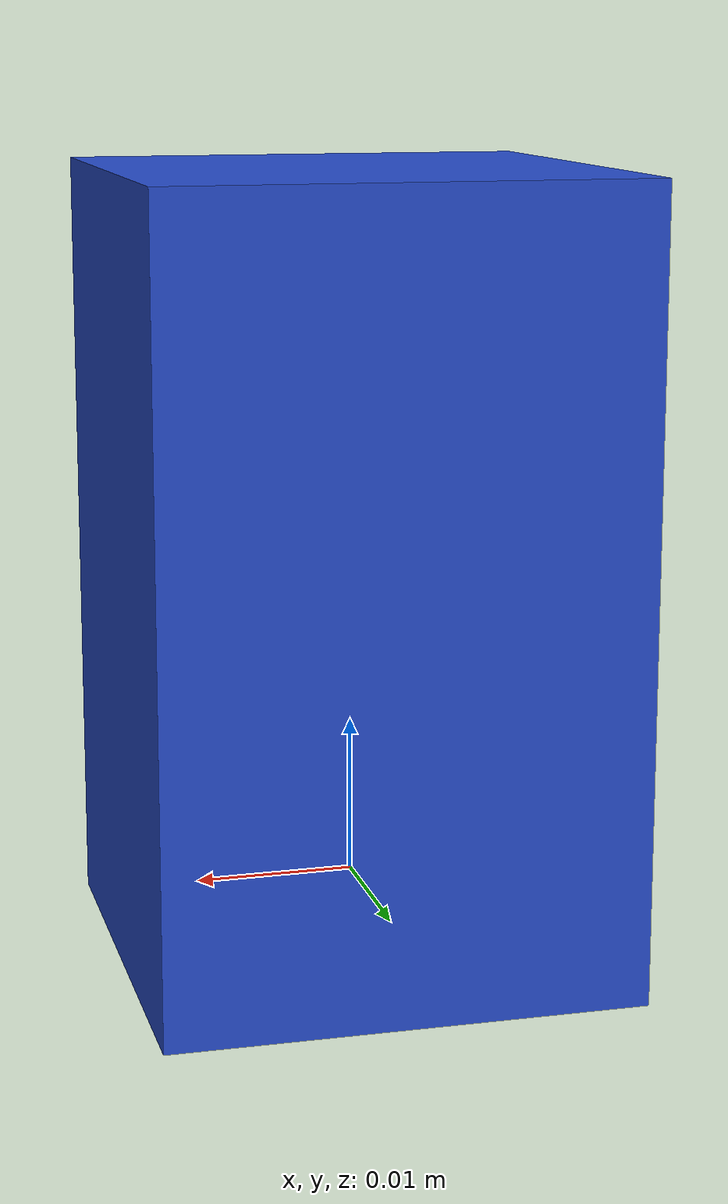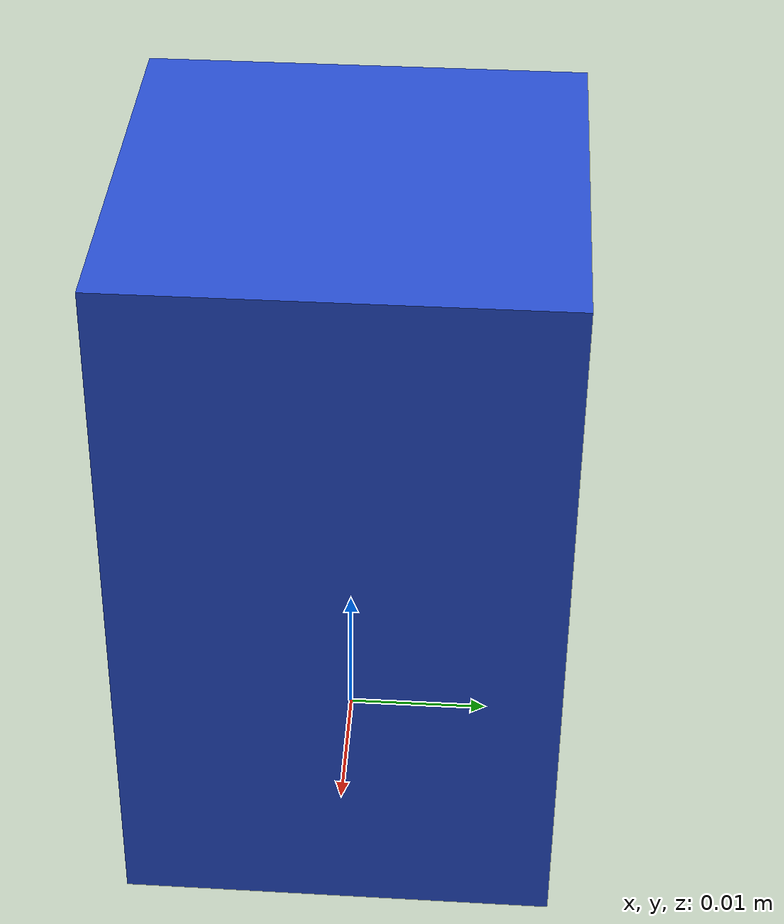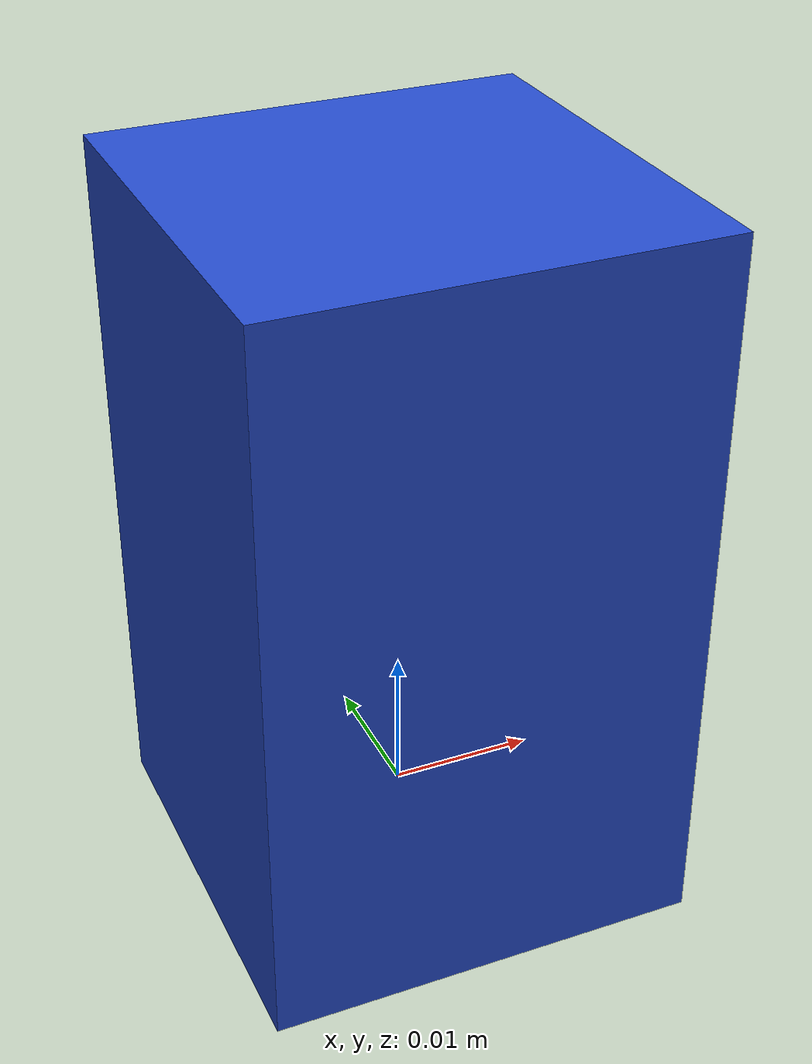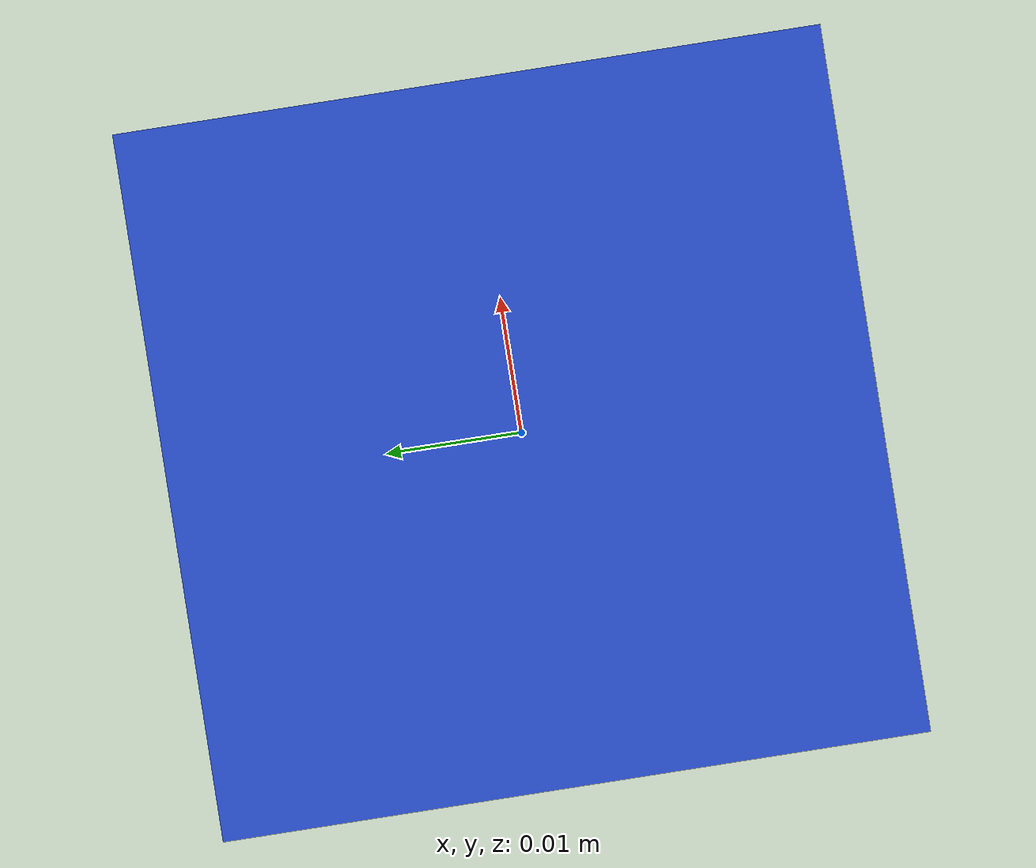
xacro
<robot name="simple_box">
      <link name="my_box">
        <inertial>
          <origin xyz="0 0 0" />
          <mass value="0.001" />
          <inertia  ixx="0.000001" ixy="0.0"  ixz="0.0"  iyy="0.000001"  iyz="0.0"  izz="0.000001" />
        </inertial>
        <visual>
          <origin xyz="0 0 0.02"/>
         <geometry>
           <box size="0.03 0.03 0.05" />
         </geometry>
       </visual>
       <collision>
         <origin xyz="0 0 0.02"/>
         <geometry>
           <box size="0.03 0.03 0.05" />
         </geometry>
       </collision>
     </link>
     <gazebo reference="my_box">
      <mu1>10000.0</mu1>
      <mu2>10000.0</mu2>
      <minDepth>0.03</minDepth>
      <maxVel>0</maxVel>
      <material>Gazebo/Blue</material>
     </gazebo>
</robot>
